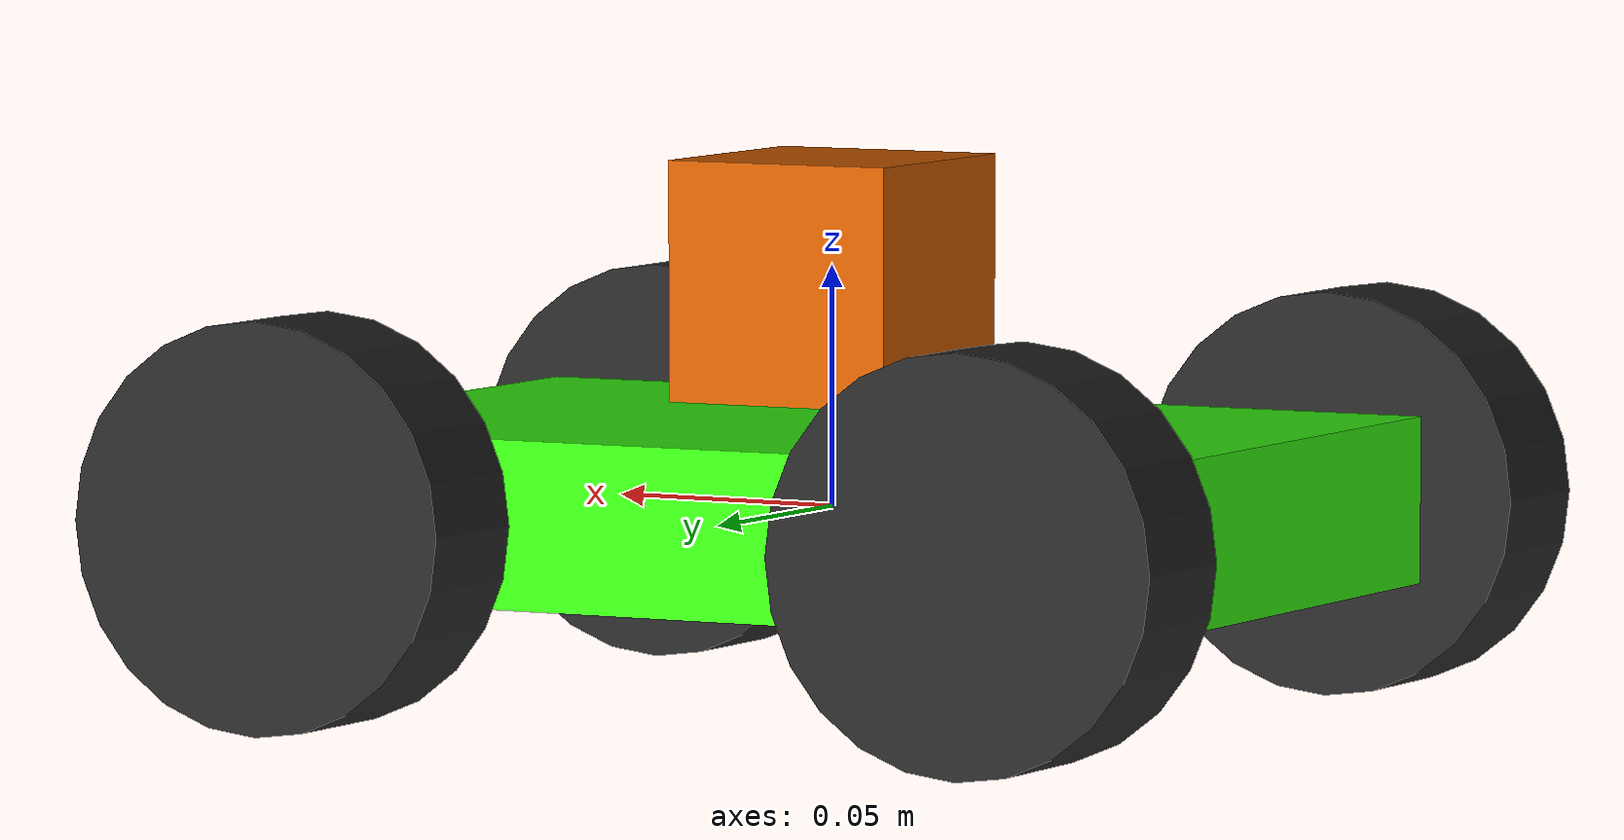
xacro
<?xml version="1.0"?>
<robot name="hercules" xmlns:xacro="http://www.ros.org/wiki/xacro">

  <xacro:property name="chassis_length" value="0.206" />
  <xacro:property name="chassis_width" value="0.135" />
  <xacro:property name="chassis_height" value="0.035" />

  <xacro:property name="wheel_radius" value="0.0425" />
  <xacro:property name="wheel_width" value="0.03" />

  <xacro:property name="wheelbase" value="0.16" />
  <xacro:property name="track" value="0.17" />
  <xacro:property name="wheel_vertical_offset" value="0.0" />

  <xacro:property name="PI" value="3.14159265359" />

 <material name="black"><color rgba="0.15 0.15 0.15 1" /></material>

  <link name="base_link">
    <visual>
      <geometry>
        <box size="${chassis_length} ${chassis_width} ${chassis_height}"/>
      </geometry>
      <material name="green">
        <color rgba="0.22 1.0 0.07 1"/>
      </material>
    </visual>
    <collision>
      <origin xyz="0 0 0" rpy="0 0 0"/>
      <geometry>
        <box size="${chassis_length} ${chassis_width} ${chassis_height}"/>
      </geometry>

    </collision>
    <inertial>
        <origin xyz="0 0 0" rpy="0 0 0"/>
       <mass value="16.523"/>
      <!-- Moments of inertia: ( chassis without wheels ) -->
      <inertia
        ixx="0.3136" ixy="-0.0008" ixz="0.0164"
        iyy="0.3922" iyz="-0.0009"
        izz="0.4485"/>
    </inertial>
  </link>

  <gazebo reference="base_link">
      <material>Gazebo/Green</material>
  </gazebo>

  <!-- https://answers.ros.org/question/151121/how-to-create-soft-objects-wheel-tires-in-gazebo/?answer=197040#post-id-197040 -->
  <xacro:macro name="cylinder_inertia" params="m r h">
    <inertia  ixx="${m*(3*r*r+h*h)/12}" ixy = "0" ixz = "0"
            iyy="${m*(3*r*r+h*h)/12}" iyz = "0"
            izz="${m*r*r/2}" />
  </xacro:macro>

  <xacro:macro name="wheel" params="prefix *joint_pose">

    <link name="${prefix}_wheel">
      <visual>
        <origin xyz="0 0 0" rpy="${PI/2} 0 0"/>
        <geometry>
          <cylinder radius="${wheel_radius}" length="${wheel_width}"/>
        </geometry>
        <material name="black" />
      </visual>
      <collision>
        <origin xyz="0 0 0" rpy="${PI/2} 0 0"/>
        <geometry>
          <cylinder radius="${wheel_radius}" length="${wheel_width}"/>
        </geometry>
      </collision>

      <inertial>
        <origin xyz="0 0 0" rpy="0 0 0"/>
        <mass value="0.5"/>
        <cylinder_inertia  m="0.5" r="${wheel_radius}" h="${wheel_width}" />
      </inertial>
    </link>

    <gazebo reference="${prefix}_wheel">
      <material>Gazebo/DarkGrey</material>
    </gazebo>

    <joint name="${prefix}_wheel_joint" type="continuous">
      <parent link="base_link"/>
      <child link="${prefix}_wheel" />
      <xacro:insert_block name="joint_pose" />
      <axis xyz="0 1 0" />
    </joint>

    <transmission name="${prefix}_wheel_trans">
      <type>transmission_interface/SimpleTransmission</type>
      <joint name="${prefix}_wheel_joint">
        <hardwareInterface>hardware_interface/VelocityJointInterface</hardwareInterface>
      </joint>
      <actuator name="${prefix}_actuator">
        <mechanicalReduction>1</mechanicalReduction>
      </actuator>
    </transmission>

  </xacro:macro>

  <xacro:wheel prefix="front_left">
    <origin xyz="${wheelbase/2} ${track/2} ${wheel_vertical_offset}" rpy="0 0 0" />
  </xacro:wheel>
  <xacro:wheel prefix="front_right">
    <origin xyz="${wheelbase/2} ${-track/2} ${wheel_vertical_offset}" rpy="0 0 0" />
  </xacro:wheel>
  <xacro:wheel prefix="back_left">
    <origin xyz="${-wheelbase/2} ${track/2} ${wheel_vertical_offset}" rpy="0 0 0" />
  </xacro:wheel>
  <xacro:wheel prefix="back_right">
    <origin xyz="${-wheelbase/2} ${-track/2} ${wheel_vertical_offset}" rpy="0 0 0" />
  </xacro:wheel>

<link name="laser_link">
    <collision>
      <origin xyz="0 0 0" rpy="0 0 0"/>
      <geometry>
        <box size="0.05 0.05 0.06"/>
      </geometry>
    </collision>
    <visual>
      <origin xyz="0 0 0" rpy="0 0 0"/>
      <geometry>
        <box size="0.05 0.05 0.05"/>
      </geometry>
    </visual>
    <inertial>
      <mass value="1e-5" />
      <origin xyz="0 0 0" rpy="0 0 0"/>
      <inertia ixx="1e-6" ixy="0" ixz="0" iyy="1e-6" iyz="0" izz="1e-6" />
    </inertial>
  </link>

  <joint name="laser_joint" type="fixed">
    <axis xyz="0 1 0" />
    <origin xyz="0 0 0.0475" rpy="0 0 0"/>
    <parent link="base_link"/>
    <child link="laser_link"/>
  </joint>

   <!-- Gazebo plugin for control using diff_drive_controller -->
  <gazebo>
    <plugin name="gazebo_ros_control" filename="libgazebo_ros_control.so">
      <robotNamespace>/</robotNamespace>
    </plugin>
  </gazebo>
  <!-- Gazebo -->

  <gazebo reference="laser_link">
    <sensor type="gpu_ray" name="laser">
      <pose>0 0 0 0 0 0</pose>
      <visualize>false</visualize>
      <update_rate>40</update_rate>
      <ray>
        <scan>
          <horizontal>
            <samples>720</samples>
            <resolution>1</resolution>
            <min_angle>-${PI/2}</min_angle>
            <max_angle>${PI/2}</max_angle>
          </horizontal>
        </scan>
        <range>
          <min>0.10</min>
          <max>30.0</max>
          <resolution>0.01</resolution>
        </range>
        <noise>
          <type>gaussian</type>
          <mean>0.0</mean>
          <stddev>0.01</stddev>
        </noise>
      </ray>
      <plugin name="gpu_laser" filename="libgazebo_ros_gpu_laser.so">
        <topicName>scan</topicName>
        <frameName>laser_link</frameName>
      </plugin>
    </sensor>
  </gazebo>

</robot>
